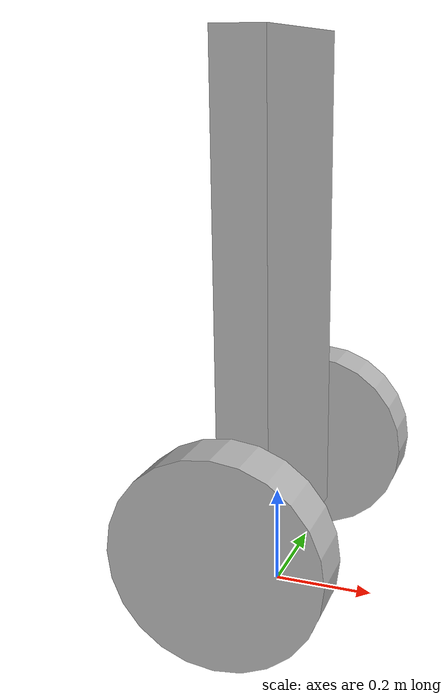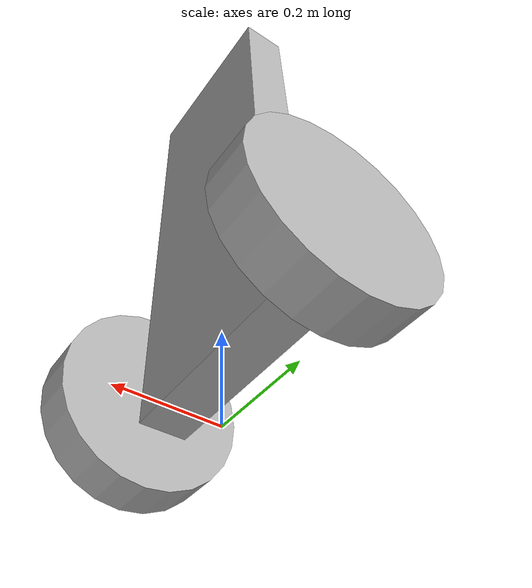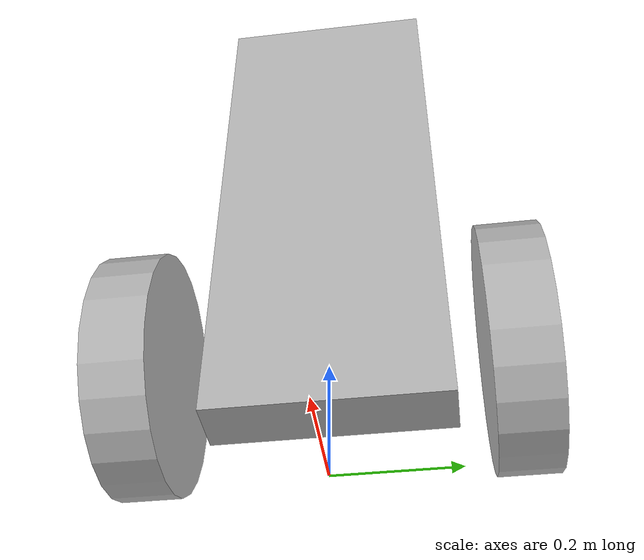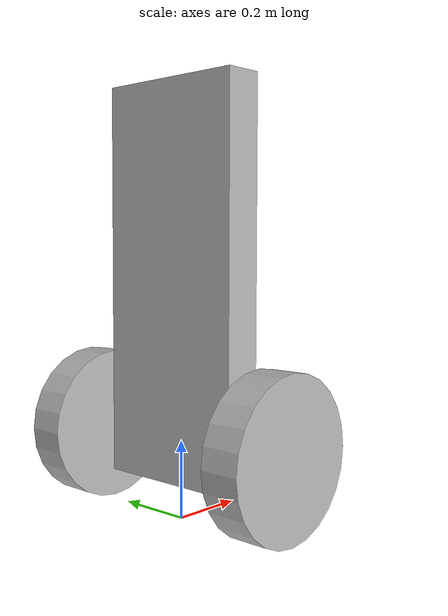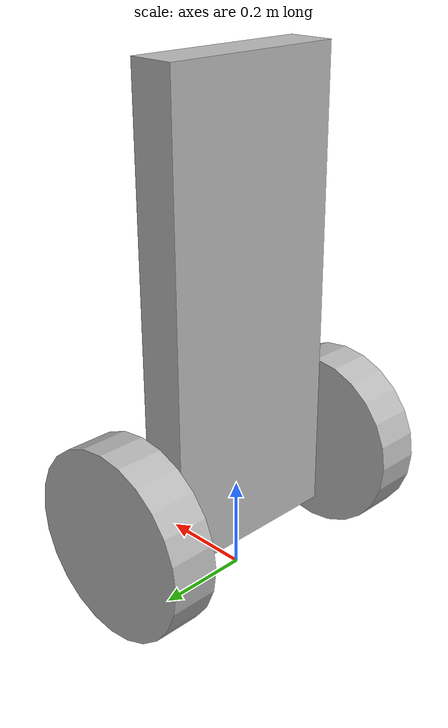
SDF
<?xml version='1.0' ?>
<sdf version='1.4'>
    <model name='balancing_robot'>
    <pose> 0 0 0 0 0 0 </pose>
    <static>false</static>

    <link name='chassis'>
        <pose>0 0 0.6 0 0 0</pose>
        <visual name='chassis'>
            <geometry>
                <box>
                    <size>0.1 0.4 1</size>
                </box>
            </geometry>
        </visual>
        <collision name='chassis'>
            <geometry>
                <box>
                    <size>0.1 0.4 1</size>
                </box>
            </geometry>
        </collision>

        <inertial>
            <mass> 10 </mass>
            <inertia>
                <ixx> 0.97 </ixx>
                <iyy> 0.842 </iyy>
                <izz> 0.141 </izz>
            </inertia>
        </inertial>

    </link>

    <link name='left_wheel'>
        <pose>0 0.3 0.21 1.57 0 0</pose>
        <visual name='left_wheel'>
            <geometry>
                <cylinder>
                    <radius>0.2</radius>
                    <length>0.1</length>
                </cylinder>
            </geometry>
        </visual>
        <collision name='left_wheel'>
            <geometry>
                <cylinder>
                    <radius>0.2</radius>
                    <length>0.1</length>
                </cylinder>
            </geometry>
        </collision>
    </link>

    <link name='right_wheel'>
        <pose>0 -0.3 0.21 1.57 0 0</pose>
        <visual name='right_wheel'>
            <geometry>
                <cylinder>
                    <radius>0.2</radius>
                    <length>0.1</length>
                </cylinder>
            </geometry>
        </visual>
        <collision name='right_wheel'>
            <geometry>
                <cylinder>
                    <radius>0.2</radius>
                    <length>0.1</length>
                </cylinder>
            </geometry>
        </collision>
    </link>

    <joint name='left_motor' type='revolute'>
        <parent>chassis</parent>
        <child>left_wheel</child>
        <axis>
            <xyz>0 1 0</xyz>
        </axis>
    </joint>

    <joint name='right_motor' type='revolute'>
        <parent>chassis</parent>
        <child>right_wheel</child>
        <axis>
            <xyz>0 1 0</xyz>
        </axis>
    </joint>

    <link name='imu_link'>
        <sensor name="imu" type="imu">
            <pose>0 0 0.6 0 0 0</pose>
            <always_on>1</always_on>
            <update_rate>100</update_rate>
            <visualize>true</visualize>

            <plugin name='imu' filename='libgazebo_ros_imu_sensor.so'>
                <ros>
                    <namespace>/balancing_robot</namespace>
                </ros>
            </plugin>
        </sensor>
    </link>

    <joint name='imu_mount' type='fixed'>
        <parent>chassis</parent>
        <child>imu_link</child>
    </joint>

    <plugin name='diff_drive' filename='libgazebo_ros_diff_drive.so'>
        <ros>
            <namespace>/balancing_robot</namespace>
        </ros>

        <left_joint>left_motor</left_joint>
        <right_joint>right_motor</right_joint>

        <wheel_separation>0.26</wheel_separation>
        <wheel_diameter>0.2</wheel_diameter>

        <max_wheel_torque>20</max_wheel_torque>
        <max_wheel_acceleration>1.0</max_wheel_acceleration>

        <publish_odom>true</publish_odom>
        <publish_odom_tf>true</publish_odom_tf>
        <publish_wheel_tf>true</publish_wheel_tf>

        <odometry_frame>odom</odometry_frame>
        <robot_base_frame>chassis</robot_base_frame>
    </plugin>

    </model>
</sdf>
